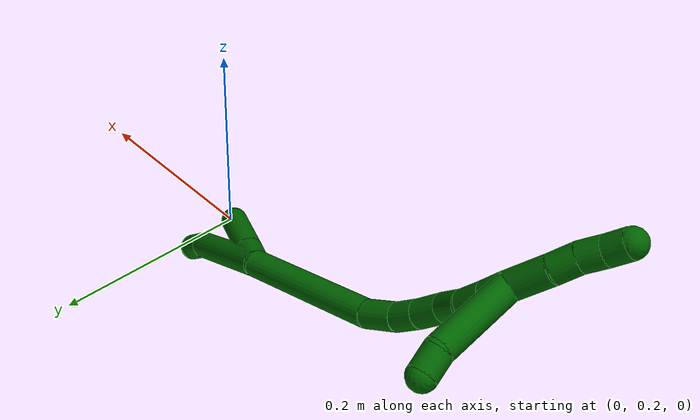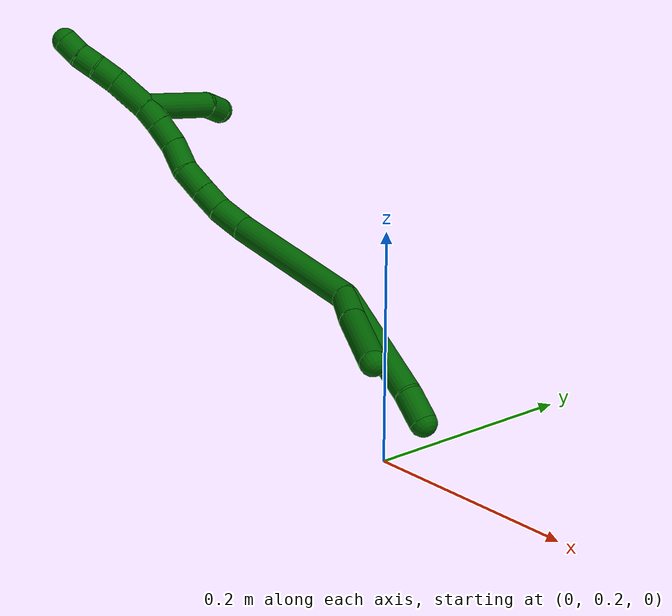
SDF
<sdf version="1.7">
 <world name="default">
  <model name="6">
   <static>0</static>
   <link name="6">
    <collision name="collision-cylinder-e_1_2_8">
     <pose>-0.000668 5.9e-05 -0.060019 -3.14062 -0.011137 2.96673</pose>
     <geometry><cylinder><radius>0.0125</radius><length>0.120046</length></cylinder></geometry>
     <surface>
      <friction><ode><mu>1.16</mu><mu2>1.16</mu2><slip1>0</slip1><slip2>0</slip2></ode></friction>
      <contact><ode><kp>1e+06</kp><kd>1</kd><max_vel>0</max_vel><min_depth>0.001</min_depth></ode></contact>
     </surface>
    </collision>
    <visual name="visual-cylinder-e_1_2_8">
     <pose>-0.000668 5.9e-05 -0.060019 -3.14062 -0.011137 2.96673</pose>
     <geometry><cylinder><radius>0.0125</radius><length>0.120046</length></cylinder></geometry>
     <material><ambient>0 0.392157 0.003922 1</ambient></material>
    </visual>
    <collision name="collision-cylinder-e_2_8_6">
     <pose>0.000573 0.002518 -0.134698 -2.97929 0.127843 -1.33354</pose>
     <geometry><cylinder><radius>0.0125</radius><length>0.029954</length></cylinder></geometry>
     <surface>
      <friction><ode><mu>1.16</mu><mu2>1.16</mu2><slip1>0</slip1><slip2>0</slip2></ode></friction>
      <contact><ode><kp>1e+06</kp><kd>1</kd><max_vel>0</max_vel><min_depth>0.001</min_depth></ode></contact>
     </surface>
    </collision>
    <visual name="visual-cylinder-e_2_8_6">
     <pose>0.000573 0.002518 -0.134698 -2.97929 0.127843 -1.33354</pose>
     <geometry><cylinder><radius>0.0125</radius><length>0.029954</length></cylinder></geometry>
     <material><ambient>0 0.392157 0.003922 1</ambient></material>
    </visual>
    <collision name="collision-cylinder-e_1_2_9">
     <pose>-0.005616 0.000462 -0.01578 -3.11233 -0.341777 2.97243</pose>
     <geometry><cylinder><radius>0.0125</radius><length>0.033511</length></cylinder></geometry>
     <surface>
      <friction><ode><mu>1.16</mu><mu2>1.16</mu2><slip1>0</slip1><slip2>0</slip2></ode></friction>
      <contact><ode><kp>1e+06</kp><kd>1</kd><max_vel>0</max_vel><min_depth>0.001</min_depth></ode></contact>
     </surface>
    </collision>
    <visual name="visual-cylinder-e_1_2_9">
     <pose>-0.005616 0.000462 -0.01578 -3.11233 -0.341777 2.97243</pose>
     <geometry><cylinder><radius>0.0125</radius><length>0.033511</length></cylinder></geometry>
     <material><ambient>0 0.392157 0.003922 1</ambient></material>
    </visual>
    <collision name="collision-cylinder-e_2_9_5">
     <pose>-0.022836 -0.001505 -0.062618 3.06356 -0.35658 -2.71492</pose>
     <geometry><cylinder><radius>0.0125</radius><length>0.066489</length></cylinder></geometry>
     <surface>
      <friction><ode><mu>1.16</mu><mu2>1.16</mu2><slip1>0</slip1><slip2>0</slip2></ode></friction>
      <contact><ode><kp>1e+06</kp><kd>1</kd><max_vel>0</max_vel><min_depth>0.001</min_depth></ode></contact>
     </surface>
    </collision>
    <visual name="visual-cylinder-e_2_9_5">
     <pose>-0.022836 -0.001505 -0.062618 3.06356 -0.35658 -2.71492</pose>
     <geometry><cylinder><radius>0.0125</radius><length>0.066489</length></cylinder></geometry>
     <material><ambient>0 0.392157 0.003922 1</ambient></material>
    </visual>
    <collision name="collision-cylinder-e_1_2_10">
     <pose>-0.004441 0.022381 0.066563 -0.324366 -0.063155 0.010337</pose>
     <geometry><cylinder><radius>0.0125</radius><length>0.140731</length></cylinder></geometry>
     <surface>
      <friction><ode><mu>1.16</mu><mu2>1.16</mu2><slip1>0</slip1><slip2>0</slip2></ode></friction>
      <contact><ode><kp>1e+06</kp><kd>1</kd><max_vel>0</max_vel><min_depth>0.001</min_depth></ode></contact>
     </surface>
    </collision>
    <visual name="visual-cylinder-e_1_2_10">
     <pose>-0.004441 0.022381 0.066563 -0.324366 -0.063155 0.010337</pose>
     <geometry><cylinder><radius>0.0125</radius><length>0.140731</length></cylinder></geometry>
     <material><ambient>0 0.392157 0.003922 1</ambient></material>
    </visual>
    <collision name="collision-cylinder-e_2_10_11">
     <pose>-0.013278 0.047914 0.148187 -0.206247 -0.278279 0.028985</pose>
     <geometry><cylinder><radius>0.0125</radius><length>0.032004</length></cylinder></geometry>
     <surface>
      <friction><ode><mu>1.16</mu><mu2>1.16</mu2><slip1>0</slip1><slip2>0</slip2></ode></friction>
      <contact><ode><kp>1e+06</kp><kd>1</kd><max_vel>0</max_vel><min_depth>0.001</min_depth></ode></contact>
     </surface>
    </collision>
    <visual name="visual-cylinder-e_2_10_11">
     <pose>-0.013278 0.047914 0.148187 -0.206247 -0.278279 0.028985</pose>
     <geometry><cylinder><radius>0.0125</radius><length>0.032004</length></cylinder></geometry>
     <material><ambient>0 0.392157 0.003922 1</ambient></material>
    </visual>
    <collision name="collision-cylinder-e_3_11_12">
     <pose>-0.022131 0.051114 0.174703 -0.004313 -0.371068 0.00081</pose>
     <geometry><cylinder><radius>0.0125</radius><length>0.024585</length></cylinder></geometry>
     <surface>
      <friction><ode><mu>1.16</mu><mu2>1.16</mu2><slip1>0</slip1><slip2>0</slip2></ode></friction>
      <contact><ode><kp>1e+06</kp><kd>1</kd><max_vel>0</max_vel><min_depth>0.001</min_depth></ode></contact>
     </surface>
    </collision>
    <visual name="visual-cylinder-e_3_11_12">
     <pose>-0.022131 0.051114 0.174703 -0.004313 -0.371068 0.00081</pose>
     <geometry><cylinder><radius>0.0125</radius><length>0.024585</length></cylinder></geometry>
     <material><ambient>0 0.392157 0.003922 1</ambient></material>
    </visual>
    <collision name="collision-cylinder-e_4_12_13">
     <pose>-0.032253 0.05047 0.198729 0.055064 -0.422787 -0.01182</pose>
     <geometry><cylinder><radius>0.0125</radius><length>0.02761</length></cylinder></geometry>
     <surface>
      <friction><ode><mu>1.16</mu><mu2>1.16</mu2><slip1>0</slip1><slip2>0</slip2></ode></friction>
      <contact><ode><kp>1e+06</kp><kd>1</kd><max_vel>0</max_vel><min_depth>0.001</min_depth></ode></contact>
     </surface>
    </collision>
    <visual name="visual-cylinder-e_4_12_13">
     <pose>-0.032253 0.05047 0.198729 0.055064 -0.422787 -0.01182</pose>
     <geometry><cylinder><radius>0.0125</radius><length>0.02761</length></cylinder></geometry>
     <material><ambient>0 0.392157 0.003922 1</ambient></material>
    </visual>
    <collision name="collision-cylinder-e_5_13_14">
     <pose>-0.04012 0.046684 0.225299 0.217514 -0.152496 -0.016683</pose>
     <geometry><cylinder><radius>0.0125</radius><length>0.029011</length></cylinder></geometry>
     <surface>
      <friction><ode><mu>1.16</mu><mu2>1.16</mu2><slip1>0</slip1><slip2>0</slip2></ode></friction>
      <contact><ode><kp>1e+06</kp><kd>1</kd><max_vel>0</max_vel><min_depth>0.001</min_depth></ode></contact>
     </surface>
    </collision>
    <visual name="visual-cylinder-e_5_13_14">
     <pose>-0.04012 0.046684 0.225299 0.217514 -0.152496 -0.016683</pose>
     <geometry><cylinder><radius>0.0125</radius><length>0.029011</length></cylinder></geometry>
     <material><ambient>0 0.392157 0.003922 1</ambient></material>
    </visual>
    <collision name="collision-cylinder-e_6_14_15">
     <pose>-0.047622 0.041564 0.250622 0.176975 -0.431631 -0.038895</pose>
     <geometry><cylinder><radius>0.0125</radius><length>0.02533</length></cylinder></geometry>
     <surface>
      <friction><ode><mu>1.16</mu><mu2>1.16</mu2><slip1>0</slip1><slip2>0</slip2></ode></friction>
      <contact><ode><kp>1e+06</kp><kd>1</kd><max_vel>0</max_vel><min_depth>0.001</min_depth></ode></contact>
     </surface>
    </collision>
    <visual name="visual-cylinder-e_6_14_15">
     <pose>-0.047622 0.041564 0.250622 0.176975 -0.431631 -0.038895</pose>
     <geometry><cylinder><radius>0.0125</radius><length>0.02533</length></cylinder></geometry>
     <material><ambient>0 0.392157 0.003922 1</ambient></material>
    </visual>
    <collision name="collision-cylinder-e_7_15_1">
     <pose>-0.058208 0.038244 0.270765 0.145744 -0.535331 -0.040035</pose>
     <geometry><cylinder><radius>0.0125</radius><length>0.020729</length></cylinder></geometry>
     <surface>
      <friction><ode><mu>1.16</mu><mu2>1.16</mu2><slip1>0</slip1><slip2>0</slip2></ode></friction>
      <contact><ode><kp>1e+06</kp><kd>1</kd><max_vel>0</max_vel><min_depth>0.001</min_depth></ode></contact>
     </surface>
    </collision>
    <visual name="visual-cylinder-e_7_15_1">
     <pose>-0.058208 0.038244 0.270765 0.145744 -0.535331 -0.040035</pose>
     <geometry><cylinder><radius>0.0125</radius><length>0.020729</length></cylinder></geometry>
     <material><ambient>0 0.392157 0.003922 1</ambient></material>
    </visual>
    <collision name="collision-cylinder-e_1_1_16">
     <pose>-0.074913 0.037141 0.294491 -0.012826 -0.653632 0.004348</pose>
     <geometry><cylinder><radius>0.0125</radius><length>0.037553</length></cylinder></geometry>
     <surface>
      <friction><ode><mu>1.16</mu><mu2>1.16</mu2><slip1>0</slip1><slip2>0</slip2></ode></friction>
      <contact><ode><kp>1e+06</kp><kd>1</kd><max_vel>0</max_vel><min_depth>0.001</min_depth></ode></contact>
     </surface>
    </collision>
    <visual name="visual-cylinder-e_1_1_16">
     <pose>-0.074913 0.037141 0.294491 -0.012826 -0.653632 0.004348</pose>
     <geometry><cylinder><radius>0.0125</radius><length>0.037553</length></cylinder></geometry>
     <material><ambient>0 0.392157 0.003922 1</ambient></material>
    </visual>
    <collision name="collision-cylinder-e_2_16_17">
     <pose>-0.094055 0.038011 0.317248 -0.086296 -0.775321 0.035255</pose>
     <geometry><cylinder><radius>0.0125</radius><length>0.022071</length></cylinder></geometry>
     <surface>
      <friction><ode><mu>1.16</mu><mu2>1.16</mu2><slip1>0</slip1><slip2>0</slip2></ode></friction>
      <contact><ode><kp>1e+06</kp><kd>1</kd><max_vel>0</max_vel><min_depth>0.001</min_depth></ode></contact>
     </surface>
    </collision>
    <visual name="visual-cylinder-e_2_16_17">
     <pose>-0.094055 0.038011 0.317248 -0.086296 -0.775321 0.035255</pose>
     <geometry><cylinder><radius>0.0125</radius><length>0.022071</length></cylinder></geometry>
     <material><ambient>0 0.392157 0.003922 1</ambient></material>
    </visual>
    <collision name="collision-cylinder-e_3_17_18">
     <pose>-0.107712 0.040109 0.333248 -0.172299 -0.622344 0.055538</pose>
     <geometry><cylinder><radius>0.0125</radius><length>0.020358</length></cylinder></geometry>
     <surface>
      <friction><ode><mu>1.16</mu><mu2>1.16</mu2><slip1>0</slip1><slip2>0</slip2></ode></friction>
      <contact><ode><kp>1e+06</kp><kd>1</kd><max_vel>0</max_vel><min_depth>0.001</min_depth></ode></contact>
     </surface>
    </collision>
    <visual name="visual-cylinder-e_3_17_18">
     <pose>-0.107712 0.040109 0.333248 -0.172299 -0.622344 0.055538</pose>
     <geometry><cylinder><radius>0.0125</radius><length>0.020358</length></cylinder></geometry>
     <material><ambient>0 0.392157 0.003922 1</ambient></material>
    </visual>
    <collision name="collision-cylinder-e_4_18_4">
     <pose>-0.118591 0.041448 0.350098 0.009039 -0.516729 -0.002389</pose>
     <geometry><cylinder><radius>0.0125</radius><length>0.020018</length></cylinder></geometry>
     <surface>
      <friction><ode><mu>1.16</mu><mu2>1.16</mu2><slip1>0</slip1><slip2>0</slip2></ode></friction>
      <contact><ode><kp>1e+06</kp><kd>1</kd><max_vel>0</max_vel><min_depth>0.001</min_depth></ode></contact>
     </surface>
    </collision>
    <visual name="visual-cylinder-e_4_18_4">
     <pose>-0.118591 0.041448 0.350098 0.009039 -0.516729 -0.002389</pose>
     <geometry><cylinder><radius>0.0125</radius><length>0.020018</length></cylinder></geometry>
     <material><ambient>0 0.392157 0.003922 1</ambient></material>
    </visual>
    <collision name="collision-cylinder-e_1_1_19">
     <pose>-0.026147 0.027035 0.284522 1.10884 1.2825 0.865952</pose>
     <geometry><cylinder><radius>0.0125</radius><length>0.077912</length></cylinder></geometry>
     <surface>
      <friction><ode><mu>1.16</mu><mu2>1.16</mu2><slip1>0</slip1><slip2>0</slip2></ode></friction>
      <contact><ode><kp>1e+06</kp><kd>1</kd><max_vel>0</max_vel><min_depth>0.001</min_depth></ode></contact>
     </surface>
    </collision>
    <visual name="visual-cylinder-e_1_1_19">
     <pose>-0.026147 0.027035 0.284522 1.10884 1.2825 0.865952</pose>
     <geometry><cylinder><radius>0.0125</radius><length>0.077912</length></cylinder></geometry>
     <material><ambient>0 0.392157 0.003922 1</ambient></material>
    </visual>
    <collision name="collision-cylinder-e_2_19_3">
     <pose>0.022206 0.017746 0.290153 -0.733453 1.48603 -0.678421</pose>
     <geometry><cylinder><radius>0.0125</radius><length>0.022088</length></cylinder></geometry>
     <surface>
      <friction><ode><mu>1.16</mu><mu2>1.16</mu2><slip1>0</slip1><slip2>0</slip2></ode></friction>
      <contact><ode><kp>1e+06</kp><kd>1</kd><max_vel>0</max_vel><min_depth>0.001</min_depth></ode></contact>
     </surface>
    </collision>
    <visual name="visual-cylinder-e_2_19_3">
     <pose>0.022206 0.017746 0.290153 -0.733453 1.48603 -0.678421</pose>
     <geometry><cylinder><radius>0.0125</radius><length>0.022088</length></cylinder></geometry>
     <material><ambient>0 0.392157 0.003922 1</ambient></material>
    </visual>
    <collision name="collision-sphere-3">
     <pose>0.03321 0.018372 0.290848 0 -0 0</pose>
     <geometry><sphere><radius>0.0125</radius></sphere></geometry>
     <surface>
      <friction><ode><mu>1.16</mu><mu2>1.16</mu2><slip1>0</slip1><slip2>0</slip2></ode></friction>
      <contact><ode><kp>1e+06</kp><kd>1</kd><max_vel>0</max_vel><min_depth>0.001</min_depth></ode></contact>
     </surface>
    </collision>
    <visual name="visual-sphere-3">
     <pose>0.03321 0.018372 0.290848 0 -0 0</pose>
     <geometry><sphere><radius>0.0125</radius></sphere></geometry>
     <material><ambient>0 0.392157 0.003922 1</ambient></material>
    </visual>
    <collision name="collision-sphere-19">
     <pose>0.011202 0.01712 0.289459 0 -0 0</pose>
     <geometry><sphere><radius>0.0125</radius></sphere></geometry>
     <surface>
      <friction><ode><mu>1.16</mu><mu2>1.16</mu2><slip1>0</slip1><slip2>0</slip2></ode></friction>
      <contact><ode><kp>1e+06</kp><kd>1</kd><max_vel>0</max_vel><min_depth>0.001</min_depth></ode></contact>
     </surface>
    </collision>
    <visual name="visual-sphere-19">
     <pose>0.011202 0.01712 0.289459 0 -0 0</pose>
     <geometry><sphere><radius>0.0125</radius></sphere></geometry>
     <material><ambient>0 0.392157 0.003922 1</ambient></material>
    </visual>
    <collision name="collision-sphere-10">
     <pose>-0.008882 0.044763 0.133126 0 -0 0</pose>
     <geometry><sphere><radius>0.0125</radius></sphere></geometry>
     <surface>
      <friction><ode><mu>1.16</mu><mu2>1.16</mu2><slip1>0</slip1><slip2>0</slip2></ode></friction>
      <contact><ode><kp>1e+06</kp><kd>1</kd><max_vel>0</max_vel><min_depth>0.001</min_depth></ode></contact>
     </surface>
    </collision>
    <visual name="visual-sphere-10">
     <pose>-0.008882 0.044763 0.133126 0 -0 0</pose>
     <geometry><sphere><radius>0.0125</radius></sphere></geometry>
     <material><ambient>0 0.392157 0.003922 1</ambient></material>
    </visual>
    <collision name="collision-sphere-5">
     <pose>-0.034441 -0.003934 -0.093676 0 -0 0</pose>
     <geometry><sphere><radius>0.0125</radius></sphere></geometry>
     <surface>
      <friction><ode><mu>1.16</mu><mu2>1.16</mu2><slip1>0</slip1><slip2>0</slip2></ode></friction>
      <contact><ode><kp>1e+06</kp><kd>1</kd><max_vel>0</max_vel><min_depth>0.001</min_depth></ode></contact>
     </surface>
    </collision>
    <visual name="visual-sphere-5">
     <pose>-0.034441 -0.003934 -0.093676 0 -0 0</pose>
     <geometry><sphere><radius>0.0125</radius></sphere></geometry>
     <material><ambient>0 0.392157 0.003922 1</ambient></material>
    </visual>
    <collision name="collision-sphere-6">
     <pose>0.002482 0.004918 -0.149358 0 -0 0</pose>
     <geometry><sphere><radius>0.0125</radius></sphere></geometry>
     <surface>
      <friction><ode><mu>1.16</mu><mu2>1.16</mu2><slip1>0</slip1><slip2>0</slip2></ode></friction>
      <contact><ode><kp>1e+06</kp><kd>1</kd><max_vel>0</max_vel><min_depth>0.001</min_depth></ode></contact>
     </surface>
    </collision>
    <visual name="visual-sphere-6">
     <pose>0.002482 0.004918 -0.149358 0 -0 0</pose>
     <geometry><sphere><radius>0.0125</radius></sphere></geometry>
     <material><ambient>0 0.392157 0.003922 1</ambient></material>
    </visual>
    <collision name="collision-sphere-9">
     <pose>-0.011232 0.000924 -0.03156 0 -0 0</pose>
     <geometry><sphere><radius>0.0125</radius></sphere></geometry>
     <surface>
      <friction><ode><mu>1.16</mu><mu2>1.16</mu2><slip1>0</slip1><slip2>0</slip2></ode></friction>
      <contact><ode><kp>1e+06</kp><kd>1</kd><max_vel>0</max_vel><min_depth>0.001</min_depth></ode></contact>
     </surface>
    </collision>
    <visual name="visual-sphere-9">
     <pose>-0.011232 0.000924 -0.03156 0 -0 0</pose>
     <geometry><sphere><radius>0.0125</radius></sphere></geometry>
     <material><ambient>0 0.392157 0.003922 1</ambient></material>
    </visual>
    <collision name="collision-sphere-2">
     <geometry><sphere><radius>0.0125</radius></sphere></geometry>
     <surface>
      <friction><ode><mu>1.16</mu><mu2>1.16</mu2><slip1>0</slip1><slip2>0</slip2></ode></friction>
      <contact><ode><kp>1e+06</kp><kd>1</kd><max_vel>0</max_vel><min_depth>0.001</min_depth></ode></contact>
     </surface>
    </collision>
    <visual name="visual-sphere-2">
     <geometry><sphere><radius>0.0125</radius></sphere></geometry>
     <material><ambient>0 0.392157 0.003922 1</ambient></material>
    </visual>
    <collision name="collision-sphere-8">
     <pose>-0.001337 0.000117 -0.120038 0 -0 0</pose>
     <geometry><sphere><radius>0.0125</radius></sphere></geometry>
     <surface>
      <friction><ode><mu>1.16</mu><mu2>1.16</mu2><slip1>0</slip1><slip2>0</slip2></ode></friction>
      <contact><ode><kp>1e+06</kp><kd>1</kd><max_vel>0</max_vel><min_depth>0.001</min_depth></ode></contact>
     </surface>
    </collision>
    <visual name="visual-sphere-8">
     <pose>-0.001337 0.000117 -0.120038 0 -0 0</pose>
     <geometry><sphere><radius>0.0125</radius></sphere></geometry>
     <material><ambient>0 0.392157 0.003922 1</ambient></material>
    </visual>
    <collision name="collision-sphere-11">
     <pose>-0.017673 0.051064 0.163247 0 -0 0</pose>
     <geometry><sphere><radius>0.0125</radius></sphere></geometry>
     <surface>
      <friction><ode><mu>1.16</mu><mu2>1.16</mu2><slip1>0</slip1><slip2>0</slip2></ode></friction>
      <contact><ode><kp>1e+06</kp><kd>1</kd><max_vel>0</max_vel><min_depth>0.001</min_depth></ode></contact>
     </surface>
    </collision>
    <visual name="visual-sphere-11">
     <pose>-0.017673 0.051064 0.163247 0 -0 0</pose>
     <geometry><sphere><radius>0.0125</radius></sphere></geometry>
     <material><ambient>0 0.392157 0.003922 1</ambient></material>
    </visual>
    <collision name="collision-sphere-12">
     <pose>-0.026588 0.051163 0.186158 0 -0 0</pose>
     <geometry><sphere><radius>0.0125</radius></sphere></geometry>
     <surface>
      <friction><ode><mu>1.16</mu><mu2>1.16</mu2><slip1>0</slip1><slip2>0</slip2></ode></friction>
      <contact><ode><kp>1e+06</kp><kd>1</kd><max_vel>0</max_vel><min_depth>0.001</min_depth></ode></contact>
     </surface>
    </collision>
    <visual name="visual-sphere-12">
     <pose>-0.026588 0.051163 0.186158 0 -0 0</pose>
     <geometry><sphere><radius>0.0125</radius></sphere></geometry>
     <material><ambient>0 0.392157 0.003922 1</ambient></material>
    </visual>
    <collision name="collision-sphere-13">
     <pose>-0.037917 0.049778 0.211299 0 -0 0</pose>
     <geometry><sphere><radius>0.0125</radius></sphere></geometry>
     <surface>
      <friction><ode><mu>1.16</mu><mu2>1.16</mu2><slip1>0</slip1><slip2>0</slip2></ode></friction>
      <contact><ode><kp>1e+06</kp><kd>1</kd><max_vel>0</max_vel><min_depth>0.001</min_depth></ode></contact>
     </surface>
    </collision>
    <visual name="visual-sphere-13">
     <pose>-0.037917 0.049778 0.211299 0 -0 0</pose>
     <geometry><sphere><radius>0.0125</radius></sphere></geometry>
     <material><ambient>0 0.392157 0.003922 1</ambient></material>
    </visual>
    <collision name="collision-sphere-14">
     <pose>-0.042324 0.04359 0.239298 0 -0 0</pose>
     <geometry><sphere><radius>0.0125</radius></sphere></geometry>
     <surface>
      <friction><ode><mu>1.16</mu><mu2>1.16</mu2><slip1>0</slip1><slip2>0</slip2></ode></friction>
      <contact><ode><kp>1e+06</kp><kd>1</kd><max_vel>0</max_vel><min_depth>0.001</min_depth></ode></contact>
     </surface>
    </collision>
    <visual name="visual-sphere-14">
     <pose>-0.042324 0.04359 0.239298 0 -0 0</pose>
     <geometry><sphere><radius>0.0125</radius></sphere></geometry>
     <material><ambient>0 0.392157 0.003922 1</ambient></material>
    </visual>
    <collision name="collision-sphere-15">
     <pose>-0.052921 0.039539 0.261945 0 -0 0</pose>
     <geometry><sphere><radius>0.0125</radius></sphere></geometry>
     <surface>
      <friction><ode><mu>1.16</mu><mu2>1.16</mu2><slip1>0</slip1><slip2>0</slip2></ode></friction>
      <contact><ode><kp>1e+06</kp><kd>1</kd><max_vel>0</max_vel><min_depth>0.001</min_depth></ode></contact>
     </surface>
    </collision>
    <visual name="visual-sphere-15">
     <pose>-0.052921 0.039539 0.261945 0 -0 0</pose>
     <geometry><sphere><radius>0.0125</radius></sphere></geometry>
     <material><ambient>0 0.392157 0.003922 1</ambient></material>
    </visual>
    <collision name="collision-sphere-1">
     <pose>-0.063495 0.03695 0.279585 0 -0 0</pose>
     <geometry><sphere><radius>0.0125</radius></sphere></geometry>
     <surface>
      <friction><ode><mu>1.16</mu><mu2>1.16</mu2><slip1>0</slip1><slip2>0</slip2></ode></friction>
      <contact><ode><kp>1e+06</kp><kd>1</kd><max_vel>0</max_vel><min_depth>0.001</min_depth></ode></contact>
     </surface>
    </collision>
    <visual name="visual-sphere-1">
     <pose>-0.063495 0.03695 0.279585 0 -0 0</pose>
     <geometry><sphere><radius>0.0125</radius></sphere></geometry>
     <material><ambient>0 0.392157 0.003922 1</ambient></material>
    </visual>
    <collision name="collision-sphere-18">
     <pose>-0.113646 0.041527 0.341397 0 -0 0</pose>
     <geometry><sphere><radius>0.0125</radius></sphere></geometry>
     <surface>
      <friction><ode><mu>1.16</mu><mu2>1.16</mu2><slip1>0</slip1><slip2>0</slip2></ode></friction>
      <contact><ode><kp>1e+06</kp><kd>1</kd><max_vel>0</max_vel><min_depth>0.001</min_depth></ode></contact>
     </surface>
    </collision>
    <visual name="visual-sphere-18">
     <pose>-0.113646 0.041527 0.341397 0 -0 0</pose>
     <geometry><sphere><radius>0.0125</radius></sphere></geometry>
     <material><ambient>0 0.392157 0.003922 1</ambient></material>
    </visual>
    <collision name="collision-sphere-16">
     <pose>-0.08633 0.037332 0.309396 0 -0 0</pose>
     <geometry><sphere><radius>0.0125</radius></sphere></geometry>
     <surface>
      <friction><ode><mu>1.16</mu><mu2>1.16</mu2><slip1>0</slip1><slip2>0</slip2></ode></friction>
      <contact><ode><kp>1e+06</kp><kd>1</kd><max_vel>0</max_vel><min_depth>0.001</min_depth></ode></contact>
     </surface>
    </collision>
    <visual name="visual-sphere-16">
     <pose>-0.08633 0.037332 0.309396 0 -0 0</pose>
     <geometry><sphere><radius>0.0125</radius></sphere></geometry>
     <material><ambient>0 0.392157 0.003922 1</ambient></material>
    </visual>
    <collision name="collision-sphere-17">
     <pose>-0.101779 0.038691 0.3251 0 -0 0</pose>
     <geometry><sphere><radius>0.0125</radius></sphere></geometry>
     <surface>
      <friction><ode><mu>1.16</mu><mu2>1.16</mu2><slip1>0</slip1><slip2>0</slip2></ode></friction>
      <contact><ode><kp>1e+06</kp><kd>1</kd><max_vel>0</max_vel><min_depth>0.001</min_depth></ode></contact>
     </surface>
    </collision>
    <visual name="visual-sphere-17">
     <pose>-0.101779 0.038691 0.3251 0 -0 0</pose>
     <geometry><sphere><radius>0.0125</radius></sphere></geometry>
     <material><ambient>0 0.392157 0.003922 1</ambient></material>
    </visual>
    <collision name="collision-sphere-4">
     <pose>-0.123536 0.041369 0.3588 0 -0 0</pose>
     <geometry><sphere><radius>0.0125</radius></sphere></geometry>
     <surface>
      <friction><ode><mu>1.16</mu><mu2>1.16</mu2><slip1>0</slip1><slip2>0</slip2></ode></friction>
      <contact><ode><kp>1e+06</kp><kd>1</kd><max_vel>0</max_vel><min_depth>0.001</min_depth></ode></contact>
     </surface>
    </collision>
    <visual name="visual-sphere-4">
     <pose>-0.123536 0.041369 0.3588 0 -0 0</pose>
     <geometry><sphere><radius>0.0125</radius></sphere></geometry>
     <material><ambient>0 0.392157 0.003922 1</ambient></material>
    </visual>
    <inertial>
     <pose>-0.025111 0.022546 0.11585 0 -0 0</pose>
     <mass>0.75</mass>
     <inertia>
      <ixx>0.000115</ixx>
      <ixy>0</ixy>
      <ixz>0</ixz>
      <iyy>0.000495</iyy>
      <iyz>0</iyz>
      <izz>-5.7e-05</izz>
     </inertia>
    </inertial>
   </link>
   <pose>-0.146982 0.283743 0.088257 -1.01307 0.42793 1.66697</pose>
  </model>
 </world>
</sdf>
